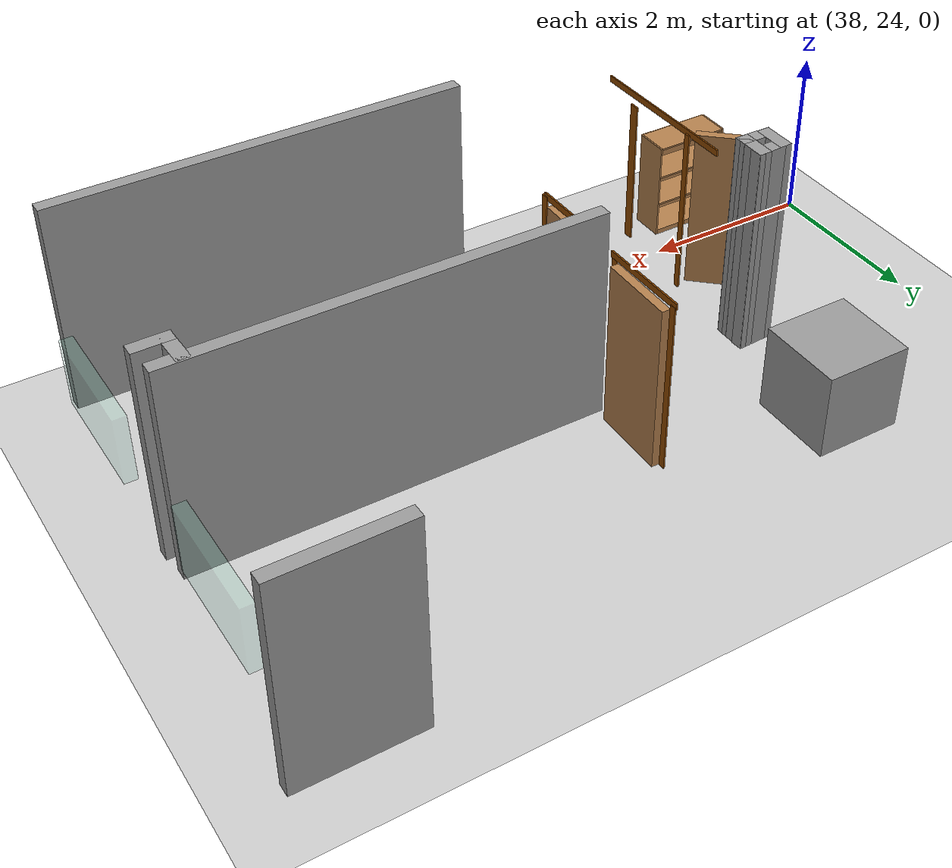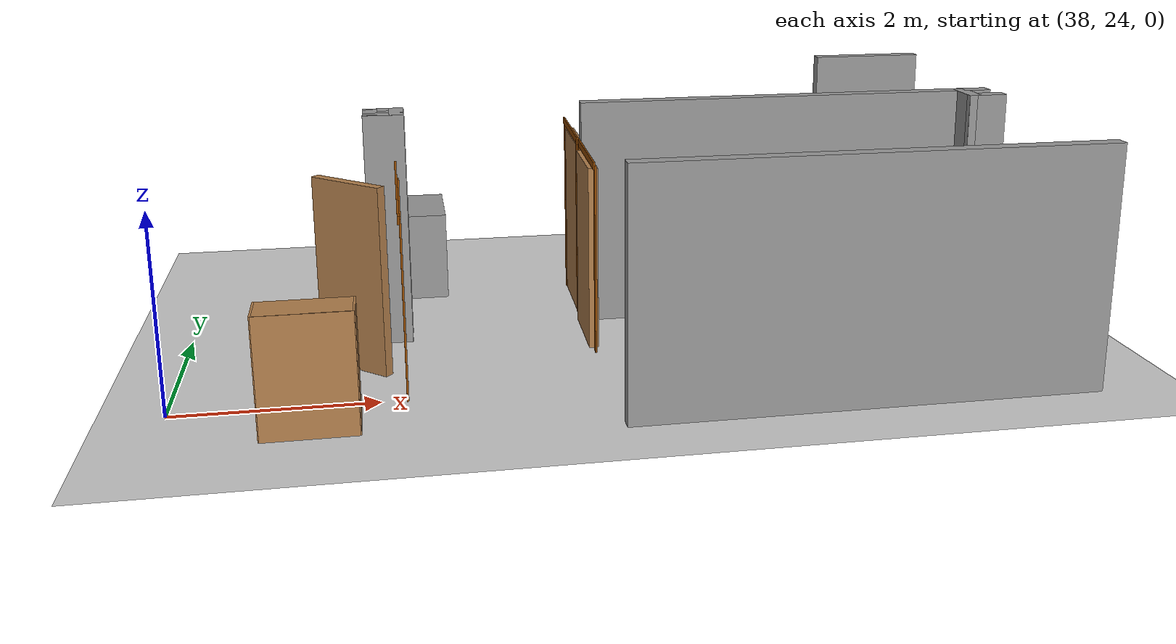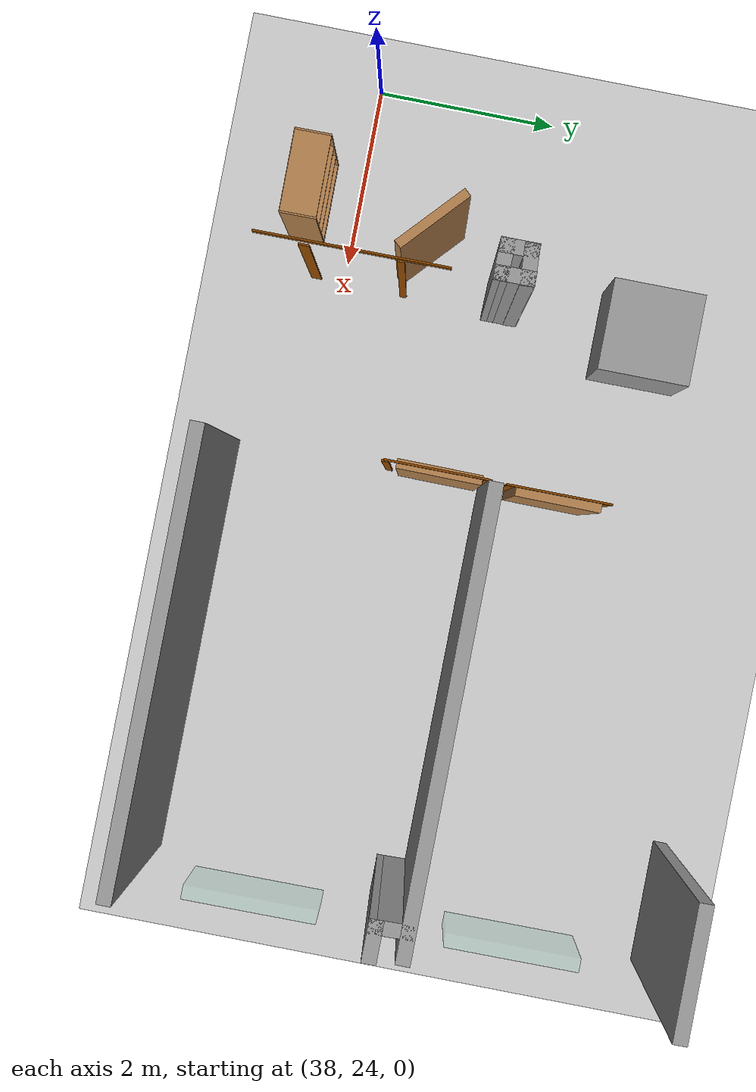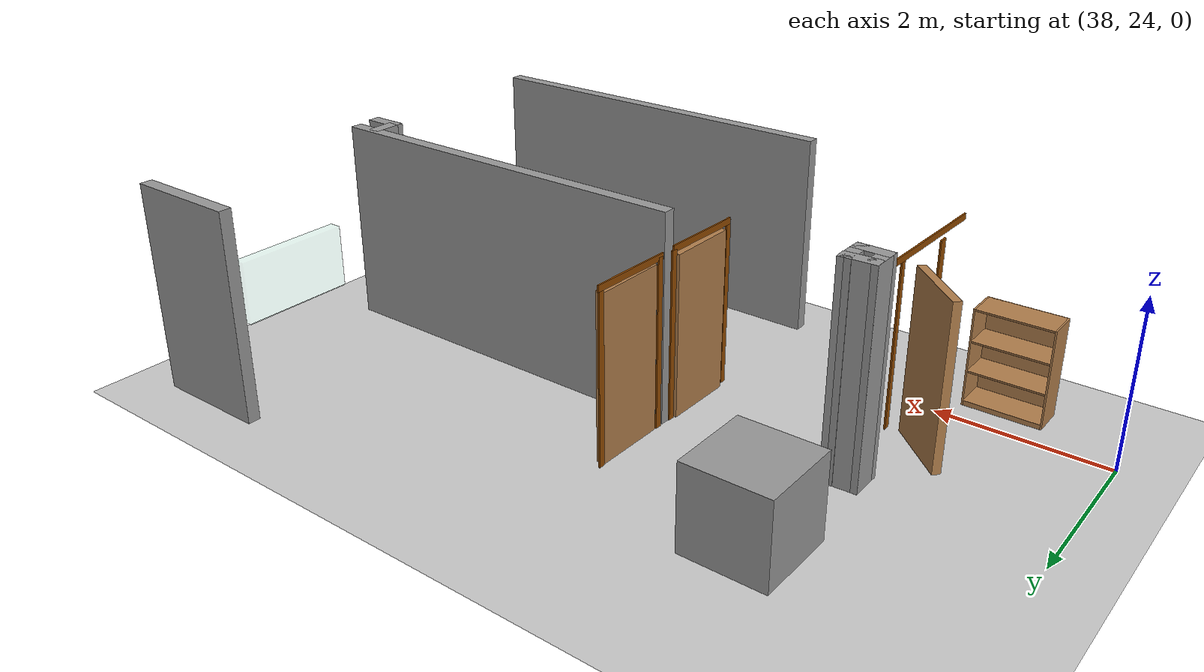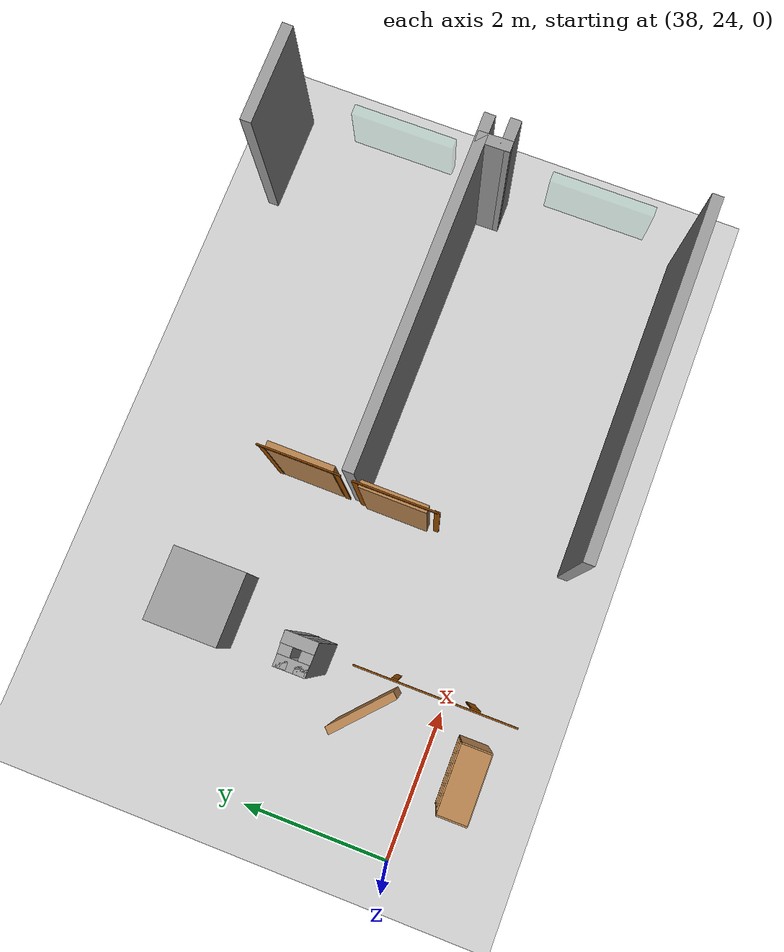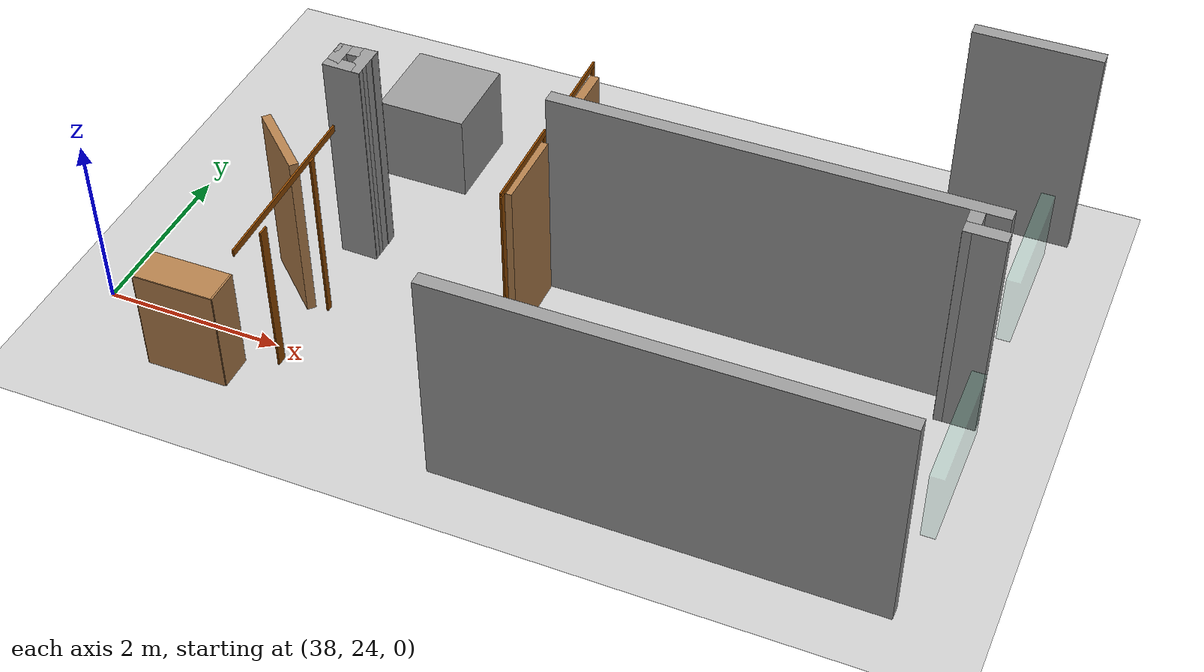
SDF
<sdf version="1.6">
 <world name="default">
  <model name="ground_plane">
   <static>1</static>
   <link name="link">
    <collision name="collision">
     <geometry><plane><normal>0 0 1</normal><size>100 100</size></plane></geometry>
     <surface><friction><ode><mu>100</mu><mu2>50</mu2></ode></friction></surface>
    </collision>
    <visual name="visual">
     <cast_shadows>0</cast_shadows>
     <geometry><plane><normal>0 0 1</normal><size>100 100</size></plane></geometry>
     <material>
      <script><uri>file://media/materials/scripts/gazebo.material</uri><name>Gazebo/Grey</name></script>
     </material>
    </visual>
   </link>
  </model>
  <model name="CVSSP">
   <pose>23.8714 24.094 0 0 -0 0</pose>
   <link name="Wall_147">
    <collision name="Wall_147_Collision">
     <geometry><box><size>1.39069 0.15 2.5</size></box></geometry>
     <pose>0 0 1.25 0 -0 0</pose>
    </collision>
    <visual name="Wall_147_Visual">
     <pose>0 0 1.25 0 -0 0</pose>
     <geometry><box><size>1.39069 0.15 2.5</size></box></geometry>
     <material>
      <script><uri>file://media/materials/scripts/gazebo.material</uri><name>Gazebo/Grey</name></script>
      <ambient>0.588235 0.588235 0.588235 1</ambient>
     </material>
    </visual>
    <pose>22.6726 4.69724 0 0 -0 0.002417</pose>
   </link>
   <link name="Wall_170">
    <collision name="Wall_170_Collision">
     <geometry><box><size>4.75 0.15 2.5</size></box></geometry>
     <pose>0 0 1.25 0 -0 0</pose>
    </collision>
    <visual name="Wall_170_Visual">
     <pose>0 0 1.25 0 -0 0</pose>
     <geometry><box><size>4.75 0.15 2.5</size></box></geometry>
     <material>
      <script><uri>file://media/materials/scripts/gazebo.material</uri><name>Gazebo/Grey</name></script>
      <ambient>0.588235 0.588235 0.588235 1</ambient>
     </material>
    </visual>
    <pose>20.7313 -1.006 0 0 -0 0</pose>
   </link>
   <link name="Wall_172">
    <collision name="Wall_172_Collision">
     <geometry><box><size>4.75 0.15 2.5</size></box></geometry>
     <pose>0 0 1.25 0 -0 0</pose>
    </collision>
    <visual name="Wall_172_Visual">
     <pose>0 0 1.25 0 -0 0</pose>
     <geometry><box><size>4.75 0.15 2.5</size></box></geometry>
     <material>
      <script><uri>file://media/materials/scripts/gazebo.material</uri><name>Gazebo/Grey</name></script>
      <ambient>0.588235 0.588235 0.588235 1</ambient>
     </material>
    </visual>
    <pose>20.7514 1.93058 0 0 -0 0</pose>
   </link>
   <link name="Wall_729">
    <collision name="Wall_729_Collision">
     <geometry><box><size>0.409263 0.15 2.5</size></box></geometry>
     <pose>0 0 1.25 0 -0 0</pose>
    </collision>
    <visual name="Wall_729_Visual">
     <pose>0 0 1.25 0 -0 0</pose>
     <geometry><box><size>0.409263 0.15 2.5</size></box></geometry>
     <material>
      <script><uri>file://media/materials/scripts/gazebo.material</uri><name>Gazebo/Grey</name></script>
      <ambient>1 1 1 1</ambient>
     </material>
    </visual>
    <pose>16.3949 1.72388 0 0 -0 1.57329</pose>
   </link>
   <link name="Wall_730">
    <collision name="Wall_730_Collision">
     <geometry><box><size>0.423174 0.15 2.5</size></box></geometry>
     <pose>0 0 1.25 0 -0 0</pose>
    </collision>
    <visual name="Wall_730_Visual">
     <pose>0 0 1.25 0 -0 0</pose>
     <geometry><box><size>0.423174 0.15 2.5</size></box></geometry>
     <material>
      <script><uri>file://media/materials/scripts/gazebo.material</uri><name>Gazebo/Grey</name></script>
      <ambient>1 1 1 1</ambient>
     </material>
    </visual>
    <pose>16.2619 1.84596 0 0 0 -3.08621</pose>
   </link>
   <link name="Wall_731">
    <collision name="Wall_731_Collision">
     <geometry><box><size>0.388455 0.15 2.5</size></box></geometry>
     <pose>0 0 1.25 0 -0 0</pose>
    </collision>
    <visual name="Wall_731_Visual">
     <pose>0 0 1.25 0 -0 0</pose>
     <geometry><box><size>0.388455 0.15 2.5</size></box></geometry>
     <material>
      <script><uri>file://media/materials/scripts/gazebo.material</uri><name>Gazebo/Grey</name></script>
      <ambient>1 1 1 1</ambient>
     </material>
    </visual>
    <pose>16.1221 1.71917 0 0 0 -1.56809</pose>
   </link>
   <link name="Wall_732">
    <collision name="Wall_732_Collision">
     <geometry><box><size>0.422814 0.15 2.5</size></box></geometry>
     <pose>0 0 1.25 0 -0 0</pose>
    </collision>
    <visual name="Wall_732_Visual">
     <pose>0 0 1.25 0 -0 0</pose>
     <geometry><box><size>0.422814 0.15 2.5</size></box></geometry>
     <material>
      <script><uri>file://media/materials/scripts/gazebo.material</uri><name>Gazebo/Grey</name></script>
      <ambient>1 1 1 1</ambient>
     </material>
    </visual>
    <pose>16.2588 1.5934 0 0 0 -0.020841</pose>
   </link>
   <link name="Wall_736">
    <collision name="Wall_736_Collision">
     <geometry><box><size>0.438586 0.15 2.5</size></box></geometry>
     <pose>0 0 1.25 0 -0 0</pose>
    </collision>
    <visual name="Wall_736_Visual">
     <pose>0 0 1.25 0 -0 0</pose>
     <geometry><box><size>0.438586 0.15 2.5</size></box></geometry>
     <material>
      <script><uri>file://media/materials/scripts/gazebo.material</uri><name>Gazebo/Grey</name></script>
      <ambient>1 1 1 1</ambient>
     </material>
    </visual>
    <pose>22.952 1.6054 0 0 -0 3.14159</pose>
   </link>
   <link name="Wall_737">
    <collision name="Wall_737_Collision">
     <geometry><box><size>0.457198 0.15 2.5</size></box></geometry>
     <pose>0 0 1.25 0 -0 0</pose>
    </collision>
    <visual name="Wall_737_Visual">
     <pose>0 0 1.25 0 -0 0</pose>
     <geometry><box><size>0.457198 0.15 2.5</size></box></geometry>
     <material>
      <script><uri>file://media/materials/scripts/gazebo.material</uri><name>Gazebo/Grey</name></script>
      <ambient>1 1 1 1</ambient>
     </material>
    </visual>
    <pose>22.8034 1.75843 0 0 -0 1.59936</pose>
   </link>
   <static>1</static>
  </model>
  <model name="window_0_clone_clone_clone_0">
   <link name="link">
    <inertial>
     <mass>0.185318</mass>
     <inertia>
      <ixx>0.0157792</ixx>
      <ixy>0</ixy>
      <ixz>0</ixz>
      <iyy>0.0398142</iyy>
      <iyz>0</iyz>
      <izz>0.0247071</izz>
     </inertia>
    </inertial>
    <visual name="visual">
     <geometry><box><size>1.44901 0.147514 0.798588</size></box></geometry>
     <material>
      <script><name>Gazebo/Grey</name><uri>file://media/materials/scripts/gazebo.material</uri></script>
      <shader type="pixel"><normal_map>__default__</normal_map></shader>
      <ambient>0.435 0.796 0.675 1</ambient>
      <diffuse>0.7 0.7 0.7 1</diffuse>
      <specular>0.01 0.01 0.01 1</specular>
      <emissive>0 0 0 1</emissive>
     </material>
     <transparency>0.8</transparency>
    </visual>
    <collision name="collision">
     <geometry><box><size>1.44901 0.147514 0.798588</size></box></geometry>
     <surface>
      <friction>
       <ode><mu>1</mu><mu2>1</mu2><fdir1>0 0 0</fdir1><slip1>0</slip1><slip2>0</slip2></ode>
       <torsional>
        <coefficient>1</coefficient>
        <patch_radius>0</patch_radius>
        <surface_radius>0</surface_radius>
        <use_patch_radius>1</use_patch_radius>
        <ode><slip>0</slip></ode>
       </torsional>
      </friction>
      <bounce><restitution_coefficient>0</restitution_coefficient><threshold>1e+06</threshold></bounce>
      <contact>
       <collide_without_contact>0</collide_without_contact>
       <collide_without_contact_bitmask>1</collide_without_contact_bitmask>
       <collide_bitmask>1</collide_bitmask>
       <ode>
        <soft_cfm>0</soft_cfm>
        <soft_erp>0.2</soft_erp>
        <kp>1e+13</kp>
        <kd>1</kd>
        <max_vel>0.01</max_vel>
        <min_depth>0</min_depth>
       </ode>
       <bullet>
        <split_impulse>1</split_impulse>
        <split_impulse_penetration_threshold>-0.01</split_impulse_penetration_threshold>
        <soft_cfm>0</soft_cfm>
        <soft_erp>0.2</soft_erp>
        <kp>1e+13</kp>
        <kd>1</kd>
       </bullet>
      </contact>
     </surface>
    </collision>
   </link>
   <static>1</static>
   <pose>47.0334 27.1977 0.904256 0 -0 1.57547</pose>
  </model>
  <model name="window_0_clone_clone_clone_1">
   <link name="link">
    <inertial>
     <mass>0.185318</mass>
     <inertia>
      <ixx>0.0157792</ixx>
      <ixy>0</ixy>
      <ixz>0</ixz>
      <iyy>0.0398142</iyy>
      <iyz>0</iyz>
      <izz>0.0247071</izz>
     </inertia>
    </inertial>
    <visual name="visual">
     <geometry><box><size>1.44901 0.147514 0.798588</size></box></geometry>
     <material>
      <script><name>Gazebo/Grey</name><uri>file://media/materials/scripts/gazebo.material</uri></script>
      <shader type="pixel"><normal_map>__default__</normal_map></shader>
      <ambient>0.435 0.796 0.675 1</ambient>
      <diffuse>0.7 0.7 0.7 1</diffuse>
      <specular>0.01 0.01 0.01 1</specular>
      <emissive>0 0 0 1</emissive>
     </material>
     <transparency>0.8</transparency>
    </visual>
    <collision name="collision">
     <geometry><box><size>1.44901 0.147514 0.798588</size></box></geometry>
     <surface>
      <friction>
       <ode><mu>1</mu><mu2>1</mu2><fdir1>0 0 0</fdir1><slip1>0</slip1><slip2>0</slip2></ode>
       <torsional>
        <coefficient>1</coefficient>
        <patch_radius>0</patch_radius>
        <surface_radius>0</surface_radius>
        <use_patch_radius>1</use_patch_radius>
        <ode><slip>0</slip></ode>
       </torsional>
      </friction>
      <bounce><restitution_coefficient>0</restitution_coefficient><threshold>1e+06</threshold></bounce>
      <contact>
       <collide_without_contact>0</collide_without_contact>
       <collide_without_contact_bitmask>1</collide_without_contact_bitmask>
       <collide_bitmask>1</collide_bitmask>
       <ode>
        <soft_cfm>0</soft_cfm>
        <soft_erp>0.2</soft_erp>
        <kp>1e+13</kp>
        <kd>1</kd>
        <max_vel>0.01</max_vel>
        <min_depth>0</min_depth>
       </ode>
       <bullet>
        <split_impulse>1</split_impulse>
        <split_impulse_penetration_threshold>-0.01</split_impulse_penetration_threshold>
        <soft_cfm>0</soft_cfm>
        <soft_erp>0.2</soft_erp>
        <kp>1e+13</kp>
        <kd>1</kd>
       </bullet>
      </contact>
     </surface>
    </collision>
   </link>
   <static>1</static>
   <pose>47.066 24.3818 0.904256 0 -0 1.57547</pose>
  </model>
  <model name="bookshelf_oak_clone">
   <link name="link">
    <inertial><mass>1</mass></inertial>
    <visual name="visual4">
     <pose>0 -0.195 0.03 0 -0 0</pose>
     <geometry><box><size>0.88 0.4 0.06</size></box></geometry>
     <material>
      <script><uri>file://media/materials/scripts/gazebo.material</uri><name>Gazebo/Wood</name></script>
      <shader type="pixel"/>
     </material>
    </visual>
    <visual name="visual3">
     <pose>-0.45 -0.195 0.6 0 -0 0</pose>
     <geometry><box><size>0.02 0.4 1.2</size></box></geometry>
     <material>
      <script><uri>file://media/materials/scripts/gazebo.material</uri><name>Gazebo/Wood</name></script>
      <shader type="pixel"/>
     </material>
    </visual>
    <visual name="visual5">
     <pose>0 -0.195 1.19 0 -0 0</pose>
     <geometry><box><size>0.88 0.4 0.02</size></box></geometry>
     <material>
      <script><uri>file://media/materials/scripts/gazebo.material</uri><name>Gazebo/Wood</name></script>
      <shader type="pixel"/>
     </material>
    </visual>
    <visual name="visual2">
     <pose>0.45 -0.195 0.6 0 -0 0</pose>
     <geometry><box><size>0.02 0.4 1.2</size></box></geometry>
     <material>
      <script><uri>file://media/materials/scripts/gazebo.material</uri><name>Gazebo/Wood</name></script>
      <shader type="pixel"/>
     </material>
    </visual>
    <visual name="visual1">
     <pose>0 0.005 0.6 0 -0 0</pose>
     <geometry><box><size>0.9 0.01 1.2</size></box></geometry>
     <material>
      <script><uri>file://media/materials/scripts/gazebo.material</uri><name>Gazebo/Wood</name></script>
      <shader type="pixel"/>
     </material>
    </visual>
    <visual name="visual6">
     <pose>0 -0.195 0.43 0 -0 0</pose>
     <geometry><box><size>0.88 0.4 0.02</size></box></geometry>
     <material>
      <script><uri>file://media/materials/scripts/gazebo.material</uri><name>Gazebo/Wood</name></script>
      <shader type="pixel"/>
     </material>
    </visual>
    <visual name="visual7">
     <pose>0 -0.195 0.8 0 -0 0</pose>
     <geometry><box><size>0.88 0.4 0.02</size></box></geometry>
     <material>
      <script><uri>file://media/materials/scripts/gazebo.material</uri><name>Gazebo/Wood</name></script>
      <shader type="pixel"/>
     </material>
    </visual>
    <collision name="back">
     <pose>0 0.005 0.6 0 -0 0</pose>
     <geometry><box><size>0.9 0.01 1.2</size></box></geometry>
     <surface>
      <friction>
       <ode><mu>1</mu><mu2>1</mu2><fdir1>0 0 0</fdir1><slip1>0</slip1><slip2>0</slip2></ode>
       <torsional>
        <coefficient>1</coefficient>
        <patch_radius>0</patch_radius>
        <surface_radius>0</surface_radius>
        <use_patch_radius>1</use_patch_radius>
        <ode><slip>0</slip></ode>
       </torsional>
      </friction>
      <bounce><restitution_coefficient>0</restitution_coefficient><threshold>1e+06</threshold></bounce>
      <contact>
       <collide_without_contact>0</collide_without_contact>
       <collide_without_contact_bitmask>1</collide_without_contact_bitmask>
       <collide_bitmask>1</collide_bitmask>
       <ode>
        <soft_cfm>0</soft_cfm>
        <soft_erp>0.2</soft_erp>
        <kp>1e+13</kp>
        <kd>1</kd>
        <max_vel>0.01</max_vel>
        <min_depth>0</min_depth>
       </ode>
       <bullet>
        <split_impulse>1</split_impulse>
        <split_impulse_penetration_threshold>-0.01</split_impulse_penetration_threshold>
        <soft_cfm>0</soft_cfm>
        <soft_erp>0.2</soft_erp>
        <kp>1e+13</kp>
        <kd>1</kd>
       </bullet>
      </contact>
     </surface>
    </collision>
    <collision name="left_side">
     <pose>0.45 -0.195 0.6 0 -0 0</pose>
     <geometry><box><size>0.02 0.4 1.2</size></box></geometry>
     <surface>
      <friction>
       <ode><mu>1</mu><mu2>1</mu2><fdir1>0 0 0</fdir1><slip1>0</slip1><slip2>0</slip2></ode>
       <torsional>
        <coefficient>1</coefficient>
        <patch_radius>0</patch_radius>
        <surface_radius>0</surface_radius>
        <use_patch_radius>1</use_patch_radius>
        <ode><slip>0</slip></ode>
       </torsional>
      </friction>
      <bounce><restitution_coefficient>0</restitution_coefficient><threshold>1e+06</threshold></bounce>
      <contact>
       <collide_without_contact>0</collide_without_contact>
       <collide_without_contact_bitmask>1</collide_without_contact_bitmask>
       <collide_bitmask>1</collide_bitmask>
       <ode>
        <soft_cfm>0</soft_cfm>
        <soft_erp>0.2</soft_erp>
        <kp>1e+13</kp>
        <kd>1</kd>
        <max_vel>0.01</max_vel>
        <min_depth>0</min_depth>
       </ode>
       <bullet>
        <split_impulse>1</split_impulse>
        <split_impulse_penetration_threshold>-0.01</split_impulse_penetration_threshold>
        <soft_cfm>0</soft_cfm>
        <soft_erp>0.2</soft_erp>
        <kp>1e+13</kp>
        <kd>1</kd>
       </bullet>
      </contact>
     </surface>
    </collision>
    <collision name="right_side">
     <pose>-0.45 -0.195 0.6 0 -0 0</pose>
     <geometry><box><size>0.02 0.4 1.2</size></box></geometry>
     <surface>
      <friction>
       <ode><mu>1</mu><mu2>1</mu2><fdir1>0 0 0</fdir1><slip1>0</slip1><slip2>0</slip2></ode>
       <torsional>
        <coefficient>1</coefficient>
        <patch_radius>0</patch_radius>
        <surface_radius>0</surface_radius>
        <use_patch_radius>1</use_patch_radius>
        <ode><slip>0</slip></ode>
       </torsional>
      </friction>
      <bounce><restitution_coefficient>0</restitution_coefficient><threshold>1e+06</threshold></bounce>
      <contact>
       <collide_without_contact>0</collide_without_contact>
       <collide_without_contact_bitmask>1</collide_without_contact_bitmask>
       <collide_bitmask>1</collide_bitmask>
       <ode>
        <soft_cfm>0</soft_cfm>
        <soft_erp>0.2</soft_erp>
        <kp>1e+13</kp>
        <kd>1</kd>
        <max_vel>0.01</max_vel>
        <min_depth>0</min_depth>
       </ode>
       <bullet>
        <split_impulse>1</split_impulse>
        <split_impulse_penetration_threshold>-0.01</split_impulse_penetration_threshold>
        <soft_cfm>0</soft_cfm>
        <soft_erp>0.2</soft_erp>
        <kp>1e+13</kp>
        <kd>1</kd>
       </bullet>
      </contact>
     </surface>
    </collision>
    <collision name="bottom">
     <pose>0 -0.195 0.03 0 -0 0</pose>
     <geometry><box><size>0.88 0.4 0.06</size></box></geometry>
     <surface>
      <friction>
       <ode><mu>1</mu><mu2>1</mu2><fdir1>0 0 0</fdir1><slip1>0</slip1><slip2>0</slip2></ode>
       <torsional>
        <coefficient>1</coefficient>
        <patch_radius>0</patch_radius>
        <surface_radius>0</surface_radius>
        <use_patch_radius>1</use_patch_radius>
        <ode><slip>0</slip></ode>
       </torsional>
      </friction>
      <bounce><restitution_coefficient>0</restitution_coefficient><threshold>1e+06</threshold></bounce>
      <contact>
       <collide_without_contact>0</collide_without_contact>
       <collide_without_contact_bitmask>1</collide_without_contact_bitmask>
       <collide_bitmask>1</collide_bitmask>
       <ode>
        <soft_cfm>0</soft_cfm>
        <soft_erp>0.2</soft_erp>
        <kp>1e+13</kp>
        <kd>1</kd>
        <max_vel>0.01</max_vel>
        <min_depth>0</min_depth>
       </ode>
       <bullet>
        <split_impulse>1</split_impulse>
        <split_impulse_penetration_threshold>-0.01</split_impulse_penetration_threshold>
        <soft_cfm>0</soft_cfm>
        <soft_erp>0.2</soft_erp>
        <kp>1e+13</kp>
        <kd>1</kd>
       </bullet>
      </contact>
     </surface>
    </collision>
    <collision name="top">
     <pose>0 -0.195 1.19 0 -0 0</pose>
     <geometry><box><size>0.88 0.4 0.02</size></box></geometry>
     <surface>
      <friction>
       <ode><mu>1</mu><mu2>1</mu2><fdir1>0 0 0</fdir1><slip1>0</slip1><slip2>0</slip2></ode>
       <torsional>
        <coefficient>1</coefficient>
        <patch_radius>0</patch_radius>
        <surface_radius>0</surface_radius>
        <use_patch_radius>1</use_patch_radius>
        <ode><slip>0</slip></ode>
       </torsional>
      </friction>
      <bounce><restitution_coefficient>0</restitution_coefficient><threshold>1e+06</threshold></bounce>
      <contact>
       <collide_without_contact>0</collide_without_contact>
       <collide_without_contact_bitmask>1</collide_without_contact_bitmask>
       <collide_bitmask>1</collide_bitmask>
       <ode>
        <soft_cfm>0</soft_cfm>
        <soft_erp>0.2</soft_erp>
        <kp>1e+13</kp>
        <kd>1</kd>
        <max_vel>0.01</max_vel>
        <min_depth>0</min_depth>
       </ode>
       <bullet>
        <split_impulse>1</split_impulse>
        <split_impulse_penetration_threshold>-0.01</split_impulse_penetration_threshold>
        <soft_cfm>0</soft_cfm>
        <soft_erp>0.2</soft_erp>
        <kp>1e+13</kp>
        <kd>1</kd>
       </bullet>
      </contact>
     </surface>
    </collision>
    <collision name="low_shelf">
     <pose>0 -0.195 0.43 0 -0 0</pose>
     <geometry><box><size>0.88 0.4 0.02</size></box></geometry>
     <surface>
      <friction>
       <ode><mu>1</mu><mu2>1</mu2><fdir1>0 0 0</fdir1><slip1>0</slip1><slip2>0</slip2></ode>
       <torsional>
        <coefficient>1</coefficient>
        <patch_radius>0</patch_radius>
        <surface_radius>0</surface_radius>
        <use_patch_radius>1</use_patch_radius>
        <ode><slip>0</slip></ode>
       </torsional>
      </friction>
      <bounce><restitution_coefficient>0</restitution_coefficient><threshold>1e+06</threshold></bounce>
      <contact>
       <collide_without_contact>0</collide_without_contact>
       <collide_without_contact_bitmask>1</collide_without_contact_bitmask>
       <collide_bitmask>1</collide_bitmask>
       <ode>
        <soft_cfm>0</soft_cfm>
        <soft_erp>0.2</soft_erp>
        <kp>1e+13</kp>
        <kd>1</kd>
        <max_vel>0.01</max_vel>
        <min_depth>0</min_depth>
       </ode>
       <bullet>
        <split_impulse>1</split_impulse>
        <split_impulse_penetration_threshold>-0.01</split_impulse_penetration_threshold>
        <soft_cfm>0</soft_cfm>
        <soft_erp>0.2</soft_erp>
        <kp>1e+13</kp>
        <kd>1</kd>
       </bullet>
      </contact>
     </surface>
    </collision>
    <collision name="high_shelf">
     <pose>0 -0.195 0.8 0 -0 0</pose>
     <geometry><box><size>0.88 0.4 0.02</size></box></geometry>
     <surface>
      <friction>
       <ode><mu>1</mu><mu2>1</mu2><fdir1>0 0 0</fdir1><slip1>0</slip1><slip2>0</slip2></ode>
       <torsional>
        <coefficient>1</coefficient>
        <patch_radius>0</patch_radius>
        <surface_radius>0</surface_radius>
        <use_patch_radius>1</use_patch_radius>
        <ode><slip>0</slip></ode>
       </torsional>
      </friction>
      <bounce><restitution_coefficient>0</restitution_coefficient><threshold>1e+06</threshold></bounce>
      <contact>
       <collide_without_contact>0</collide_without_contact>
       <collide_without_contact_bitmask>1</collide_without_contact_bitmask>
       <collide_bitmask>1</collide_bitmask>
       <ode>
        <soft_cfm>0</soft_cfm>
        <soft_erp>0.2</soft_erp>
        <kp>1e+13</kp>
        <kd>1</kd>
        <max_vel>0.01</max_vel>
        <min_depth>0</min_depth>
       </ode>
       <bullet>
        <split_impulse>1</split_impulse>
        <split_impulse_penetration_threshold>-0.01</split_impulse_penetration_threshold>
        <soft_cfm>0</soft_cfm>
        <soft_erp>0.2</soft_erp>
        <kp>1e+13</kp>
        <kd>1</kd>
       </bullet>
      </contact>
     </surface>
    </collision>
   </link>
   <static>1</static>
   <pose>39.3619 23.2793 0 0 0 -3.13727</pose>
  </model>
  <model name="basic_ply_door_corrected_clone_0_clone_clone">
   <link name="link">
    <pose>-0 0 1.00385 0 -0 0</pose>
    <inertial>
     <mass>0.5167</mass>
     <inertia>
      <ixx>0.00086117</ixx>
      <ixy>0</ixy>
      <ixz>0</ixz>
      <iyy>0.00086117</iyy>
      <iyz>0</iyz>
      <izz>0.00086117</izz>
     </inertia>
    </inertial>
    <gravity>0</gravity>
    <visual name="visual">
     <geometry><box><size>0.88 0.1 1.96</size></box></geometry>
     <material>
      <script><uri>file://media/materials/scripts/gazebo.material</uri><name>Gazebo/Wood</name></script>
      <shader type="pixel"><normal_map>__default__</normal_map></shader>
      <ambient>1 1 1 1</ambient>
      <diffuse>1 1 1 1</diffuse>
      <specular>0.2 0.2 0.2 1</specular>
      <emissive>0 0 0 1</emissive>
     </material>
    </visual>
    <collision name="collision">
     <geometry><box><size>0.88 0.1 1.96</size></box></geometry>
     <surface>
      <friction>
       <ode><mu>1</mu><mu2>1</mu2><fdir1>0 0 0</fdir1><slip1>0</slip1><slip2>0</slip2></ode>
       <torsional>
        <coefficient>1</coefficient>
        <patch_radius>0</patch_radius>
        <surface_radius>0.01</surface_radius>
        <use_patch_radius>0</use_patch_radius>
        <ode><slip>0</slip></ode>
       </torsional>
      </friction>
      <bounce><restitution_coefficient>0</restitution_coefficient><threshold>1e+06</threshold></bounce>
      <contact>
       <collide_without_contact>0</collide_without_contact>
       <collide_without_contact_bitmask>1</collide_without_contact_bitmask>
       <collide_bitmask>1</collide_bitmask>
       <ode>
        <soft_cfm>0</soft_cfm>
        <soft_erp>0.2</soft_erp>
        <kp>100000</kp>
        <kd>100</kd>
        <max_vel>100</max_vel>
        <min_depth>0.001</min_depth>
       </ode>
       <bullet>
        <split_impulse>1</split_impulse>
        <split_impulse_penetration_threshold>-0.01</split_impulse_penetration_threshold>
        <soft_cfm>0</soft_cfm>
        <soft_erp>0.2</soft_erp>
        <kp>100000</kp>
        <kd>100</kd>
       </bullet>
      </contact>
     </surface>
    </collision>
   </link>
   <static>1</static>
   <pose>42.2811 26.6943 -0.00101 0 -0 1.56379</pose>
  </model>
  <model name="basic_ply_door_corrected_clone_0_clone_clone_0">
   <link name="link">
    <pose>-0 0 1.00385 0 -0 0</pose>
    <inertial>
     <mass>0.5167</mass>
     <inertia>
      <ixx>0.00086117</ixx>
      <ixy>0</ixy>
      <ixz>0</ixz>
      <iyy>0.00086117</iyy>
      <iyz>0</iyz>
      <izz>0.00086117</izz>
     </inertia>
    </inertial>
    <gravity>0</gravity>
    <visual name="visual">
     <geometry><box><size>0.88 0.1 1.96</size></box></geometry>
     <material>
      <script><uri>file://media/materials/scripts/gazebo.material</uri><name>Gazebo/Wood</name></script>
      <shader type="pixel"><normal_map>__default__</normal_map></shader>
      <ambient>1 1 1 1</ambient>
      <diffuse>1 1 1 1</diffuse>
      <specular>0.2 0.2 0.2 1</specular>
      <emissive>0 0 0 1</emissive>
     </material>
    </visual>
    <collision name="collision">
     <geometry><box><size>0.88 0.1 1.96</size></box></geometry>
     <surface>
      <friction>
       <ode><mu>1</mu><mu2>1</mu2><fdir1>0 0 0</fdir1><slip1>0</slip1><slip2>0</slip2></ode>
       <torsional>
        <coefficient>1</coefficient>
        <patch_radius>0</patch_radius>
        <surface_radius>0.01</surface_radius>
        <use_patch_radius>0</use_patch_radius>
        <ode><slip>0</slip></ode>
       </torsional>
      </friction>
      <bounce><restitution_coefficient>0</restitution_coefficient><threshold>1e+06</threshold></bounce>
      <contact>
       <collide_without_contact>0</collide_without_contact>
       <collide_without_contact_bitmask>1</collide_without_contact_bitmask>
       <collide_bitmask>1</collide_bitmask>
       <ode>
        <soft_cfm>0</soft_cfm>
        <soft_erp>0.2</soft_erp>
        <kp>100000</kp>
        <kd>100</kd>
        <max_vel>100</max_vel>
        <min_depth>0.001</min_depth>
       </ode>
       <bullet>
        <split_impulse>1</split_impulse>
        <split_impulse_penetration_threshold>-0.01</split_impulse_penetration_threshold>
        <soft_cfm>0</soft_cfm>
        <soft_erp>0.2</soft_erp>
        <kp>100000</kp>
        <kd>100</kd>
       </bullet>
      </contact>
     </surface>
    </collision>
   </link>
   <static>1</static>
   <pose>42.2357 25.4705 -0.00101 0 -0 1.56379</pose>
  </model>
  <model name="basic_ply_door_corrected_clone_0_clone_clone_1">
   <link name="link">
    <pose>-0 0 1.00385 0 -0 0</pose>
    <inertial>
     <mass>0.5167</mass>
     <inertia>
      <ixx>0.00086117</ixx>
      <ixy>0</ixy>
      <ixz>0</ixz>
      <iyy>0.00086117</iyy>
      <iyz>0</iyz>
      <izz>0.00086117</izz>
     </inertia>
    </inertial>
    <gravity>0</gravity>
    <visual name="visual">
     <geometry><box><size>0.88 0.1 1.96</size></box></geometry>
     <material>
      <script><uri>file://media/materials/scripts/gazebo.material</uri><name>Gazebo/Wood</name></script>
      <shader type="pixel"><normal_map>__default__</normal_map></shader>
      <ambient>1 1 1 1</ambient>
      <diffuse>1 1 1 1</diffuse>
      <specular>0.2 0.2 0.2 1</specular>
      <emissive>0 0 0 1</emissive>
     </material>
    </visual>
    <collision name="collision">
     <geometry><box><size>0.88 0.1 1.96</size></box></geometry>
     <surface>
      <friction>
       <ode><mu>1</mu><mu2>1</mu2><fdir1>0 0 0</fdir1><slip1>0</slip1><slip2>0</slip2></ode>
       <torsional>
        <coefficient>1</coefficient>
        <patch_radius>0</patch_radius>
        <surface_radius>0.01</surface_radius>
        <use_patch_radius>0</use_patch_radius>
        <ode><slip>0</slip></ode>
       </torsional>
      </friction>
      <bounce><restitution_coefficient>0</restitution_coefficient><threshold>1e+06</threshold></bounce>
      <contact>
       <collide_without_contact>0</collide_without_contact>
       <collide_without_contact_bitmask>1</collide_without_contact_bitmask>
       <collide_bitmask>1</collide_bitmask>
       <ode>
        <soft_cfm>0</soft_cfm>
        <soft_erp>0.2</soft_erp>
        <kp>100000</kp>
        <kd>100</kd>
        <max_vel>100</max_vel>
        <min_depth>0.001</min_depth>
       </ode>
       <bullet>
        <split_impulse>1</split_impulse>
        <split_impulse_penetration_threshold>-0.01</split_impulse_penetration_threshold>
        <soft_cfm>0</soft_cfm>
        <soft_erp>0.2</soft_erp>
        <kp>100000</kp>
        <kd>100</kd>
       </bullet>
      </contact>
     </surface>
    </collision>
   </link>
   <static>1</static>
   <pose>39.7565 24.918 -0.00101 0 -0 2.40024</pose>
  </model>
  <model name="metal_radiator">
   <link name="link">
    <inertial>
     <mass>1</mass>
     <inertia>
      <ixx>0.166667</ixx>
      <ixy>0</ixy>
      <ixz>0</ixz>
      <iyy>0.166667</iyy>
      <iyz>0</iyz>
      <izz>0.166667</izz>
     </inertia>
    </inertial>
    <gravity>0</gravity>
    <visual name="visual">
     <geometry><box><size>0.999999 1 0.999999</size></box></geometry>
     <material>
      <script><name>Gazebo/Grey</name><uri>file://media/materials/scripts/gazebo.material</uri></script>
      <shader type="pixel"><normal_map>__default__</normal_map></shader>
      <emissive>0 0 0 1</emissive>
      <ambient>1 1 1 1</ambient>
      <diffuse>0.7 0.7 0.7 1</diffuse>
      <specular>0.01 0.01 0.01 1</specular>
      <lighting>0</lighting>
     </material>
    </visual>
    <collision name="collision">
     <geometry><box><size>0.999999 1 0.999999</size></box></geometry>
     <surface>
      <friction>
       <ode><mu>1</mu><mu2>1</mu2><fdir1>0 0 0</fdir1><slip1>0</slip1><slip2>0</slip2></ode>
       <torsional>
        <coefficient>1</coefficient>
        <patch_radius>0</patch_radius>
        <surface_radius>0</surface_radius>
        <use_patch_radius>1</use_patch_radius>
        <ode><slip>0</slip></ode>
       </torsional>
      </friction>
      <bounce><restitution_coefficient>0</restitution_coefficient><threshold>1e+06</threshold></bounce>
      <contact>
       <collide_without_contact>0</collide_without_contact>
       <collide_without_contact_bitmask>1</collide_without_contact_bitmask>
       <collide_bitmask>1</collide_bitmask>
       <ode>
        <soft_cfm>0</soft_cfm>
        <soft_erp>0.2</soft_erp>
        <kp>1e+13</kp>
        <kd>1</kd>
        <max_vel>0.01</max_vel>
        <min_depth>0</min_depth>
       </ode>
       <bullet>
        <split_impulse>1</split_impulse>
        <split_impulse_penetration_threshold>-0.01</split_impulse_penetration_threshold>
        <soft_cfm>0</soft_cfm>
        <soft_erp>0.2</soft_erp>
        <kp>1e+13</kp>
        <kd>1</kd>
       </bullet>
      </contact>
     </surface>
    </collision>
   </link>
   <static>1</static>
   <pose>40.2852 27.4289 0.545875 0 -0 0</pose>
  </model>
  <model name="oak_frame_0">
   <link name="link">
    <inertial>
     <mass>1</mass>
     <inertia>
      <ixx>0.166667</ixx>
      <ixy>0</ixy>
      <ixz>0</ixz>
      <iyy>0.166667</iyy>
      <iyz>0</iyz>
      <izz>0.166667</izz>
     </inertia>
    </inertial>
    <visual name="visual">
     <geometry><box><size>0.018685 0.118107 1.77296</size></box></geometry>
     <material>
      <script><name>Gazebo/Grey</name><uri>file://media/materials/scripts/gazebo.material</uri></script>
      <shader type="pixel"><normal_map>__default__</normal_map></shader>
      <diffuse>0.58 0.29 0 0</diffuse>
      <ambient>0.58 0.29 0 1</ambient>
      <specular>0.01 0.01 0.01 1</specular>
      <emissive>0 0 0 1</emissive>
     </material>
    </visual>
    <collision name="collision">
     <geometry><box><size>0.018685 0.118107 1.77296</size></box></geometry>
     <surface>
      <friction>
       <ode><mu>1</mu><mu2>1</mu2><fdir1>0 0 0</fdir1><slip1>0</slip1><slip2>0</slip2></ode>
       <torsional>
        <coefficient>1</coefficient>
        <patch_radius>0</patch_radius>
        <surface_radius>0</surface_radius>
        <use_patch_radius>1</use_patch_radius>
        <ode><slip>0</slip></ode>
       </torsional>
      </friction>
      <bounce><restitution_coefficient>0</restitution_coefficient><threshold>1e+06</threshold></bounce>
      <contact>
       <collide_without_contact>0</collide_without_contact>
       <collide_without_contact_bitmask>1</collide_without_contact_bitmask>
       <collide_bitmask>1</collide_bitmask>
       <ode>
        <soft_cfm>0</soft_cfm>
        <soft_erp>0.2</soft_erp>
        <kp>1e+13</kp>
        <kd>1</kd>
        <max_vel>0.01</max_vel>
        <min_depth>0</min_depth>
       </ode>
       <bullet>
        <split_impulse>1</split_impulse>
        <split_impulse_penetration_threshold>-0.01</split_impulse_penetration_threshold>
        <soft_cfm>0</soft_cfm>
        <soft_erp>0.2</soft_erp>
        <kp>1e+13</kp>
        <kd>1</kd>
       </bullet>
      </contact>
     </surface>
    </collision>
   </link>
   <static>1</static>
   <pose>40.2495 23.69 1.03242 0 -0 0</pose>
  </model>
  <model name="oak_frame_0_clone">
   <link name="link">
    <inertial>
     <mass>1</mass>
     <inertia>
      <ixx>0.166667</ixx>
      <ixy>0</ixy>
      <ixz>0</ixz>
      <iyy>0.166667</iyy>
      <iyz>0</iyz>
      <izz>0.166667</izz>
     </inertia>
    </inertial>
    <visual name="visual">
     <geometry><box><size>0.018685 0.076446 2.026</size></box></geometry>
     <material>
      <script><name>Gazebo/Grey</name><uri>file://media/materials/scripts/gazebo.material</uri></script>
      <shader type="pixel"><normal_map>__default__</normal_map></shader>
      <diffuse>0.58 0.29 0 0</diffuse>
      <ambient>0.58 0.29 0 1</ambient>
      <specular>0.01 0.01 0.01 1</specular>
      <emissive>0 0 0 1</emissive>
     </material>
    </visual>
    <collision name="collision">
     <geometry><box><size>0.018685 0.076446 2.026</size></box></geometry>
     <surface>
      <friction>
       <ode><mu>1</mu><mu2>1</mu2><fdir1>0 0 0</fdir1><slip1>0</slip1><slip2>0</slip2></ode>
       <torsional>
        <coefficient>1</coefficient>
        <patch_radius>0</patch_radius>
        <surface_radius>0</surface_radius>
        <use_patch_radius>1</use_patch_radius>
        <ode><slip>0</slip></ode>
       </torsional>
      </friction>
      <bounce><restitution_coefficient>0</restitution_coefficient><threshold>1e+06</threshold></bounce>
      <contact>
       <collide_without_contact>0</collide_without_contact>
       <collide_without_contact_bitmask>1</collide_without_contact_bitmask>
       <collide_bitmask>1</collide_bitmask>
       <ode>
        <soft_cfm>0</soft_cfm>
        <soft_erp>0.2</soft_erp>
        <kp>1e+13</kp>
        <kd>1</kd>
        <max_vel>0.01</max_vel>
        <min_depth>0</min_depth>
       </ode>
       <bullet>
        <split_impulse>1</split_impulse>
        <split_impulse_penetration_threshold>-0.01</split_impulse_penetration_threshold>
        <soft_cfm>0</soft_cfm>
        <soft_erp>0.2</soft_erp>
        <kp>1e+13</kp>
        <kd>1</kd>
       </bullet>
      </contact>
     </surface>
    </collision>
   </link>
   <static>1</static>
   <pose>40.2515 24.6922 1.03242 0 -0 0</pose>
  </model>
  <model name="oak_frame_0_clone_0">
   <link name="link">
    <inertial>
     <mass>1</mass>
     <inertia>
      <ixx>0.166667</ixx>
      <ixy>0</ixy>
      <ixz>0</ixz>
      <iyy>0.166667</iyy>
      <iyz>0</iyz>
      <izz>0.166667</izz>
     </inertia>
    </inertial>
    <visual name="visual">
     <geometry><box><size>0.018685 0.076446 2.02601</size></box></geometry>
     <material>
      <script><name>Gazebo/Grey</name><uri>file://media/materials/scripts/gazebo.material</uri></script>
      <shader type="pixel"><normal_map>__default__</normal_map></shader>
      <diffuse>0.58 0.29 0 0</diffuse>
      <ambient>0.58 0.29 0 1</ambient>
      <specular>0.01 0.01 0.01 1</specular>
      <emissive>0 0 0 1</emissive>
     </material>
    </visual>
    <collision name="collision">
     <geometry><box><size>0.018685 0.076446 2.02601</size></box></geometry>
     <surface>
      <friction>
       <ode><mu>1</mu><mu2>1</mu2><fdir1>0 0 0</fdir1><slip1>0</slip1><slip2>0</slip2></ode>
       <torsional>
        <coefficient>1</coefficient>
        <patch_radius>0</patch_radius>
        <surface_radius>0</surface_radius>
        <use_patch_radius>1</use_patch_radius>
        <ode><slip>0</slip></ode>
       </torsional>
      </friction>
      <bounce><restitution_coefficient>0</restitution_coefficient><threshold>1e+06</threshold></bounce>
      <contact>
       <collide_without_contact>0</collide_without_contact>
       <collide_without_contact_bitmask>1</collide_without_contact_bitmask>
       <collide_bitmask>1</collide_bitmask>
       <ode>
        <soft_cfm>0</soft_cfm>
        <soft_erp>0.2</soft_erp>
        <kp>1e+13</kp>
        <kd>1</kd>
        <max_vel>0.01</max_vel>
        <min_depth>0</min_depth>
       </ode>
       <bullet>
        <split_impulse>1</split_impulse>
        <split_impulse_penetration_threshold>-0.01</split_impulse_penetration_threshold>
        <soft_cfm>0</soft_cfm>
        <soft_erp>0.2</soft_erp>
        <kp>1e+13</kp>
        <kd>1</kd>
       </bullet>
      </contact>
     </surface>
    </collision>
   </link>
   <static>1</static>
   <pose>40.2332 24.1894 2.05002 -1.55236 0 0</pose>
  </model>
  <model name="oak_frame_0_clone_clone">
   <link name="link">
    <inertial>
     <mass>1</mass>
     <inertia>
      <ixx>0.166667</ixx>
      <ixy>0</ixy>
      <ixz>0</ixz>
      <iyy>0.166667</iyy>
      <iyz>0</iyz>
      <izz>0.166667</izz>
     </inertia>
    </inertial>
    <visual name="visual">
     <geometry><box><size>0.018685 0.076446 2.026</size></box></geometry>
     <material>
      <script><name>Gazebo/Grey</name><uri>file://media/materials/scripts/gazebo.material</uri></script>
      <shader type="pixel"><normal_map>__default__</normal_map></shader>
      <diffuse>0.58 0.29 0 0</diffuse>
      <ambient>0.58 0.29 0 1</ambient>
      <specular>0.01 0.01 0.01 1</specular>
      <emissive>0 0 0 1</emissive>
     </material>
    </visual>
    <collision name="collision">
     <geometry><box><size>0.018685 0.076446 2.026</size></box></geometry>
     <surface>
      <friction>
       <ode><mu>1</mu><mu2>1</mu2><fdir1>0 0 0</fdir1><slip1>0</slip1><slip2>0</slip2></ode>
       <torsional>
        <coefficient>1</coefficient>
        <patch_radius>0</patch_radius>
        <surface_radius>0</surface_radius>
        <use_patch_radius>1</use_patch_radius>
        <ode><slip>0</slip></ode>
       </torsional>
      </friction>
      <bounce><restitution_coefficient>0</restitution_coefficient><threshold>1e+06</threshold></bounce>
      <contact>
       <collide_without_contact>0</collide_without_contact>
       <collide_without_contact_bitmask>1</collide_without_contact_bitmask>
       <collide_bitmask>1</collide_bitmask>
       <ode>
        <soft_cfm>0</soft_cfm>
        <soft_erp>0.2</soft_erp>
        <kp>1e+13</kp>
        <kd>1</kd>
        <max_vel>0.01</max_vel>
        <min_depth>0</min_depth>
       </ode>
       <bullet>
        <split_impulse>1</split_impulse>
        <split_impulse_penetration_threshold>-0.01</split_impulse_penetration_threshold>
        <soft_cfm>0</soft_cfm>
        <soft_erp>0.2</soft_erp>
        <kp>1e+13</kp>
        <kd>1</kd>
       </bullet>
      </contact>
     </surface>
    </collision>
   </link>
   <static>1</static>
   <pose>42.2231 25.9652 1.03242 0 -0 0</pose>
  </model>
  <model name="oak_frame_0_clone_clone_0">
   <link name="link">
    <inertial>
     <mass>1</mass>
     <inertia>
      <ixx>0.166667</ixx>
      <ixy>0</ixy>
      <ixz>0</ixz>
      <iyy>0.166667</iyy>
      <iyz>0</iyz>
      <izz>0.166667</izz>
     </inertia>
    </inertial>
    <visual name="visual">
     <geometry><box><size>0.018685 0.076446 2.026</size></box></geometry>
     <material>
      <script><name>Gazebo/Grey</name><uri>file://media/materials/scripts/gazebo.material</uri></script>
      <shader type="pixel"><normal_map>__default__</normal_map></shader>
      <diffuse>0.58 0.29 0 0</diffuse>
      <ambient>0.58 0.29 0 1</ambient>
      <specular>0.01 0.01 0.01 1</specular>
      <emissive>0 0 0 1</emissive>
     </material>
    </visual>
    <collision name="collision">
     <geometry><box><size>0.018685 0.076446 2.026</size></box></geometry>
     <surface>
      <friction>
       <ode><mu>1</mu><mu2>1</mu2><fdir1>0 0 0</fdir1><slip1>0</slip1><slip2>0</slip2></ode>
       <torsional>
        <coefficient>1</coefficient>
        <patch_radius>0</patch_radius>
        <surface_radius>0</surface_radius>
        <use_patch_radius>1</use_patch_radius>
        <ode><slip>0</slip></ode>
       </torsional>
      </friction>
      <bounce><restitution_coefficient>0</restitution_coefficient><threshold>1e+06</threshold></bounce>
      <contact>
       <collide_without_contact>0</collide_without_contact>
       <collide_without_contact_bitmask>1</collide_without_contact_bitmask>
       <collide_bitmask>1</collide_bitmask>
       <ode>
        <soft_cfm>0</soft_cfm>
        <soft_erp>0.2</soft_erp>
        <kp>1e+13</kp>
        <kd>1</kd>
        <max_vel>0.01</max_vel>
        <min_depth>0</min_depth>
       </ode>
       <bullet>
        <split_impulse>1</split_impulse>
        <split_impulse_penetration_threshold>-0.01</split_impulse_penetration_threshold>
        <soft_cfm>0</soft_cfm>
        <soft_erp>0.2</soft_erp>
        <kp>1e+13</kp>
        <kd>1</kd>
       </bullet>
      </contact>
     </surface>
    </collision>
   </link>
   <static>1</static>
   <pose>42.2348 24.9161 1.03242 0 -0 0</pose>
  </model>
  <model name="oak_frame_0_clone_clone_1">
   <link name="link">
    <inertial>
     <mass>1</mass>
     <inertia>
      <ixx>0.166667</ixx>
      <ixy>0</ixy>
      <ixz>0</ixz>
      <iyy>0.166667</iyy>
      <iyz>0</iyz>
      <izz>0.166667</izz>
     </inertia>
    </inertial>
    <visual name="visual">
     <geometry><box><size>0.018685 0.076446 2.026</size></box></geometry>
     <material>
      <script><name>Gazebo/Grey</name><uri>file://media/materials/scripts/gazebo.material</uri></script>
      <shader type="pixel"><normal_map>__default__</normal_map></shader>
      <diffuse>0.58 0.29 0 0</diffuse>
      <ambient>0.58 0.29 0 1</ambient>
      <specular>0.01 0.01 0.01 1</specular>
      <emissive>0 0 0 1</emissive>
     </material>
    </visual>
    <collision name="collision">
     <geometry><box><size>0.018685 0.076446 2.026</size></box></geometry>
     <surface>
      <friction>
       <ode><mu>1</mu><mu2>1</mu2><fdir1>0 0 0</fdir1><slip1>0</slip1><slip2>0</slip2></ode>
       <torsional>
        <coefficient>1</coefficient>
        <patch_radius>0</patch_radius>
        <surface_radius>0</surface_radius>
        <use_patch_radius>1</use_patch_radius>
        <ode><slip>0</slip></ode>
       </torsional>
      </friction>
      <bounce><restitution_coefficient>0</restitution_coefficient><threshold>1e+06</threshold></bounce>
      <contact>
       <collide_without_contact>0</collide_without_contact>
       <collide_without_contact_bitmask>1</collide_without_contact_bitmask>
       <collide_bitmask>1</collide_bitmask>
       <ode>
        <soft_cfm>0</soft_cfm>
        <soft_erp>0.2</soft_erp>
        <kp>1e+13</kp>
        <kd>1</kd>
        <max_vel>0.01</max_vel>
        <min_depth>0</min_depth>
       </ode>
       <bullet>
        <split_impulse>1</split_impulse>
        <split_impulse_penetration_threshold>-0.01</split_impulse_penetration_threshold>
        <soft_cfm>0</soft_cfm>
        <soft_erp>0.2</soft_erp>
        <kp>1e+13</kp>
        <kd>1</kd>
       </bullet>
      </contact>
     </surface>
    </collision>
   </link>
   <static>1</static>
   <pose>42.2324 26.1959 1.03242 0 -0 0</pose>
  </model>
  <model name="oak_frame_0_clone_clone_2">
   <link name="link">
    <inertial>
     <mass>1</mass>
     <inertia>
      <ixx>0.166667</ixx>
      <ixy>0</ixy>
      <ixz>0</ixz>
      <iyy>0.166667</iyy>
      <iyz>0</iyz>
      <izz>0.166667</izz>
     </inertia>
    </inertial>
    <visual name="visual">
     <geometry><box><size>0.018685 0.076446 2.026</size></box></geometry>
     <material>
      <script><name>Gazebo/Grey</name><uri>file://media/materials/scripts/gazebo.material</uri></script>
      <shader type="pixel"><normal_map>__default__</normal_map></shader>
      <diffuse>0.58 0.29 0 0</diffuse>
      <ambient>0.58 0.29 0 1</ambient>
      <specular>0.01 0.01 0.01 1</specular>
      <emissive>0 0 0 1</emissive>
     </material>
    </visual>
    <collision name="collision">
     <geometry><box><size>0.018685 0.076446 2.026</size></box></geometry>
     <surface>
      <friction>
       <ode><mu>1</mu><mu2>1</mu2><fdir1>0 0 0</fdir1><slip1>0</slip1><slip2>0</slip2></ode>
       <torsional>
        <coefficient>1</coefficient>
        <patch_radius>0</patch_radius>
        <surface_radius>0</surface_radius>
        <use_patch_radius>1</use_patch_radius>
        <ode><slip>0</slip></ode>
       </torsional>
      </friction>
      <bounce><restitution_coefficient>0</restitution_coefficient><threshold>1e+06</threshold></bounce>
      <contact>
       <collide_without_contact>0</collide_without_contact>
       <collide_without_contact_bitmask>1</collide_without_contact_bitmask>
       <collide_bitmask>1</collide_bitmask>
       <ode>
        <soft_cfm>0</soft_cfm>
        <soft_erp>0.2</soft_erp>
        <kp>1e+13</kp>
        <kd>1</kd>
        <max_vel>0.01</max_vel>
        <min_depth>0</min_depth>
       </ode>
       <bullet>
        <split_impulse>1</split_impulse>
        <split_impulse_penetration_threshold>-0.01</split_impulse_penetration_threshold>
        <soft_cfm>0</soft_cfm>
        <soft_erp>0.2</soft_erp>
        <kp>1e+13</kp>
        <kd>1</kd>
       </bullet>
      </contact>
     </surface>
    </collision>
   </link>
   <static>1</static>
   <pose>42.2379 27.1754 1.03242 0 -0 0</pose>
  </model>
  <model name="oak_frame_0_clone_0_clone">
   <link name="link">
    <inertial>
     <mass>1</mass>
     <inertia>
      <ixx>0.166667</ixx>
      <ixy>0</ixy>
      <ixz>0</ixz>
      <iyy>0.166667</iyy>
      <iyz>0</iyz>
      <izz>0.166667</izz>
     </inertia>
    </inertial>
    <visual name="visual">
     <geometry><box><size>0.018685 0.076446 1.08038</size></box></geometry>
     <material>
      <script><name>Gazebo/Grey</name><uri>file://media/materials/scripts/gazebo.material</uri></script>
      <shader type="pixel"><normal_map>__default__</normal_map></shader>
      <diffuse>0.58 0.29 0 0</diffuse>
      <ambient>0.58 0.29 0 1</ambient>
      <specular>0.01 0.01 0.01 1</specular>
      <emissive>0 0 0 1</emissive>
     </material>
    </visual>
    <collision name="collision">
     <geometry><box><size>0.018685 0.076446 1.08038</size></box></geometry>
     <surface>
      <friction>
       <ode><mu>1</mu><mu2>1</mu2><fdir1>0 0 0</fdir1><slip1>0</slip1><slip2>0</slip2></ode>
       <torsional>
        <coefficient>1</coefficient>
        <patch_radius>0</patch_radius>
        <surface_radius>0</surface_radius>
        <use_patch_radius>1</use_patch_radius>
        <ode><slip>0</slip></ode>
       </torsional>
      </friction>
      <bounce><restitution_coefficient>0</restitution_coefficient><threshold>1e+06</threshold></bounce>
      <contact>
       <collide_without_contact>0</collide_without_contact>
       <collide_without_contact_bitmask>1</collide_without_contact_bitmask>
       <collide_bitmask>1</collide_bitmask>
       <ode>
        <soft_cfm>0</soft_cfm>
        <soft_erp>0.2</soft_erp>
        <kp>1e+13</kp>
        <kd>1</kd>
        <max_vel>0.01</max_vel>
        <min_depth>0</min_depth>
       </ode>
       <bullet>
        <split_impulse>1</split_impulse>
        <split_impulse_penetration_threshold>-0.01</split_impulse_penetration_threshold>
        <soft_cfm>0</soft_cfm>
        <soft_erp>0.2</soft_erp>
        <kp>1e+13</kp>
        <kd>1</kd>
       </bullet>
      </contact>
     </surface>
    </collision>
   </link>
   <static>1</static>
   <pose>42.2236 25.4423 2.05002 -1.55236 0 0</pose>
  </model>
  <model name="oak_frame_0_clone_0_clone_0">
   <link name="link">
    <inertial>
     <mass>1</mass>
     <inertia>
      <ixx>0.166667</ixx>
      <ixy>0</ixy>
      <ixz>0</ixz>
      <iyy>0.166667</iyy>
      <iyz>0</iyz>
      <izz>0.166667</izz>
     </inertia>
    </inertial>
    <visual name="visual">
     <geometry><box><size>0.018685 0.076446 1.08038</size></box></geometry>
     <material>
      <script><name>Gazebo/Grey</name><uri>file://media/materials/scripts/gazebo.material</uri></script>
      <shader type="pixel"><normal_map>__default__</normal_map></shader>
      <diffuse>0.58 0.29 0 0</diffuse>
      <ambient>0.58 0.29 0 1</ambient>
      <specular>0.01 0.01 0.01 1</specular>
      <emissive>0 0 0 1</emissive>
     </material>
    </visual>
    <collision name="collision">
     <geometry><box><size>0.018685 0.076446 1.08038</size></box></geometry>
     <surface>
      <friction>
       <ode><mu>1</mu><mu2>1</mu2><fdir1>0 0 0</fdir1><slip1>0</slip1><slip2>0</slip2></ode>
       <torsional>
        <coefficient>1</coefficient>
        <patch_radius>0</patch_radius>
        <surface_radius>0</surface_radius>
        <use_patch_radius>1</use_patch_radius>
        <ode><slip>0</slip></ode>
       </torsional>
      </friction>
      <bounce><restitution_coefficient>0</restitution_coefficient><threshold>1e+06</threshold></bounce>
      <contact>
       <collide_without_contact>0</collide_without_contact>
       <collide_without_contact_bitmask>1</collide_without_contact_bitmask>
       <collide_bitmask>1</collide_bitmask>
       <ode>
        <soft_cfm>0</soft_cfm>
        <soft_erp>0.2</soft_erp>
        <kp>1e+13</kp>
        <kd>1</kd>
        <max_vel>0.01</max_vel>
        <min_depth>0</min_depth>
       </ode>
       <bullet>
        <split_impulse>1</split_impulse>
        <split_impulse_penetration_threshold>-0.01</split_impulse_penetration_threshold>
        <soft_cfm>0</soft_cfm>
        <soft_erp>0.2</soft_erp>
        <kp>1e+13</kp>
        <kd>1</kd>
       </bullet>
      </contact>
     </surface>
    </collision>
   </link>
   <static>1</static>
   <pose>42.2332 26.6847 2.05002 -1.55236 0 0</pose>
  </model>
 </world>
</sdf>
